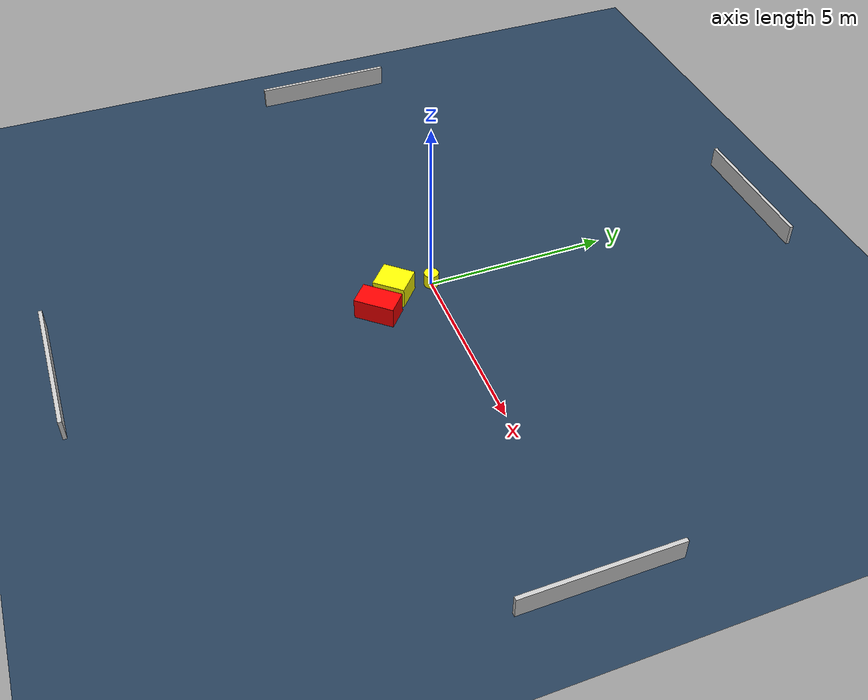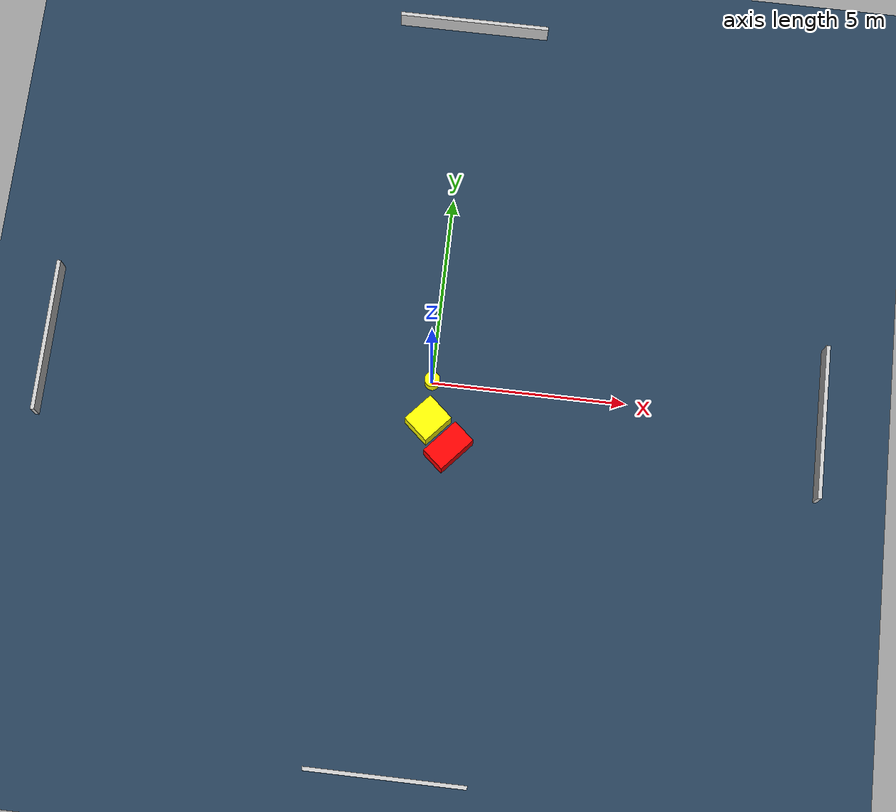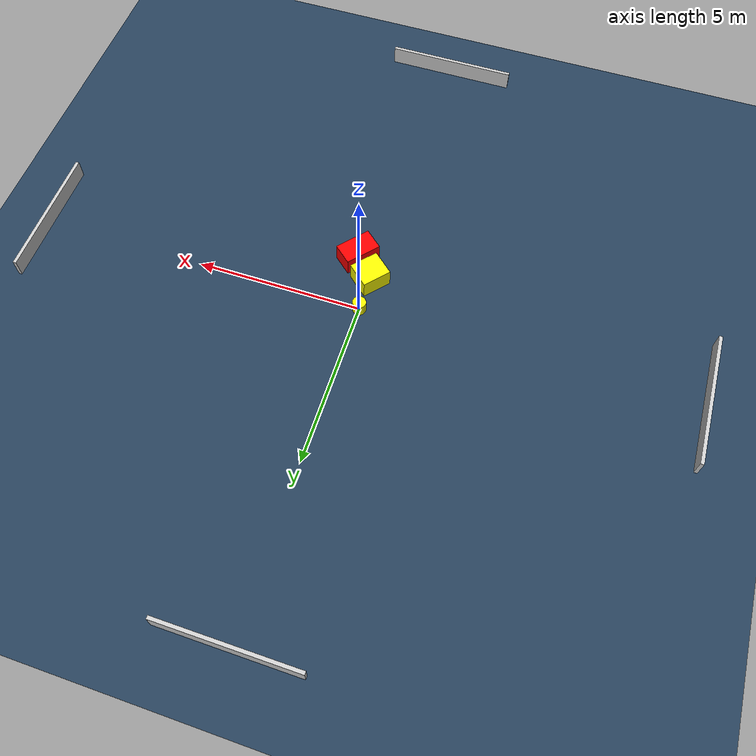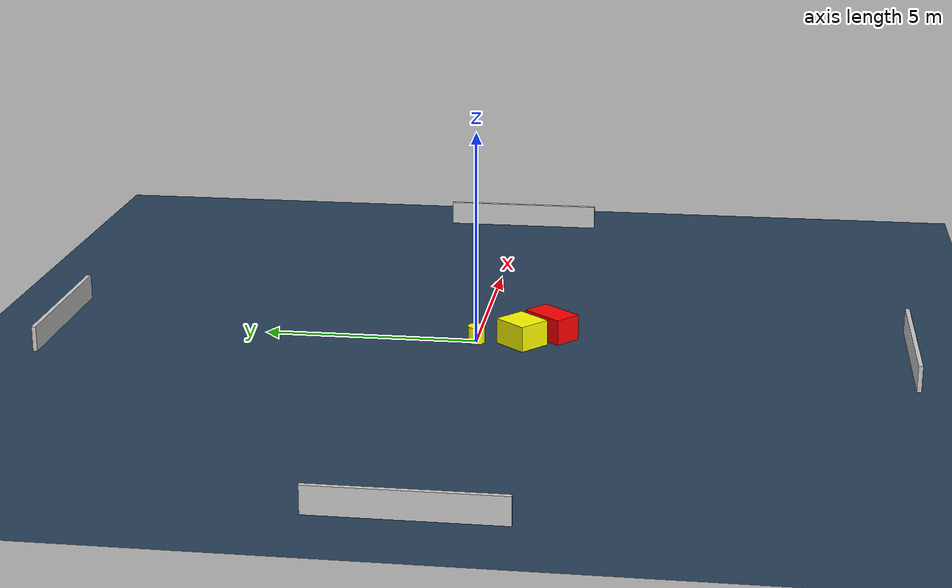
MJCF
<?xml version="1.0" ?>
<mujoco model="generated_environment">
  <option timestep="0.01" integrator="RK4" cone="elliptic"/>
  <default>
    <geom density="1"/>
  </default>
  <asset>
    <texture builtin="gradient" height="3072" name="skybox" rgb1="0.3 0.5 0.7" rgb2="0 0 0" type="skybox" width="512"/>
    <texture builtin="checker" height="300" name="groundplane" rgb1="0.2 0.3 0.4" rgb2="0.1 0.2 0.3" type="2d" width="300"/>
    <material name="groundplane" reflectance="0.2" texrepeat="5 5" texture="groundplane"/>
  </asset>
  <worldbody>
    <light dir="0 0 -1" directional="true" pos="0 0 1.5"/>
    <geom condim="3" friction="0.5 0.005 0.001" material="groundplane" name="floor" pos="0 0 0" size="0 0 0.05" type="plane"/>
    <body name="walls">
      <geom name="wall_1" condim="4" pos="-10.0 0.0 0.3" rgba="0.800000011920929 0.800000011920929 0.800000011920929 1.0" size="0.05 2.0 0.3" type="box"/>
      <geom name="wall_2" condim="4" pos="10.0 0.0 0.3" rgba="0.800000011920929 0.800000011920929 0.800000011920929 1.0" size="0.05 2.0 0.3" type="box"/>
      <geom name="wall_3" condim="4" pos="0.0 -10.0 0.3" rgba="0.800000011920929 0.800000011920929 0.800000011920929 1.0" size="2.0 0.05 0.3" type="box"/>
      <geom name="wall_4" condim="4" pos="0.0 10.0 0.3" rgba="0.800000011920929 0.800000011920929 0.800000011920929 1.0" size="2.0 0.05 0.3" type="box"/>
    </body>
    <body name="robot">
      <joint name="joint_x" type="slide" pos="0 0 0" axis="1 0 0"/>
      <joint name="joint_y" type="slide" pos="0 0 0" axis="0 1 0"/>
      <geom name="robot" type="cylinder" pos="0.0 0.0 0.2" size="0.2 0.2 0.0" mass="5.0" friction="1.0 0.005 0.0001" condim="4" rgba="1.0 1.0 0.0 1.0"/>
    </body>
    <body name="obstacle_1_movable">
      <geom name="obstacle_1_movable" condim="4" pos="0.015866944093530632 -1.0689838540645984 0.3" euler="0 0 318.6798080132771" friction="0.0 0.005 0.001" rgba="1.0 1.0 0.0 1.0" size="0.39567546211724947 0.4435520326842219 0.3" type="box" mass="0.1"/>
      <joint type="free"/>
    </body>
    <body name="obstacle_2_static">
      <geom name="obstacle_2_static" condim="4" pos="0.6069901214951026 -1.712847426356619 0.3" euler="0 0 319.01956155056683" friction="0.0 0.005 0.001" rgba="1.0 0.0 0.0 1.0" size="0.33197843488269463 0.5484214525591954 0.3" type="box"/>
    </body>
  </worldbody>
  <actuator>
    <motor name="actuator_x" joint="joint_x" gear="1" ctrlrange="-1 1"/>
    <motor name="actuator_y" joint="joint_y" gear="1" ctrlrange="-1 1"/>
  </actuator>
</mujoco>
